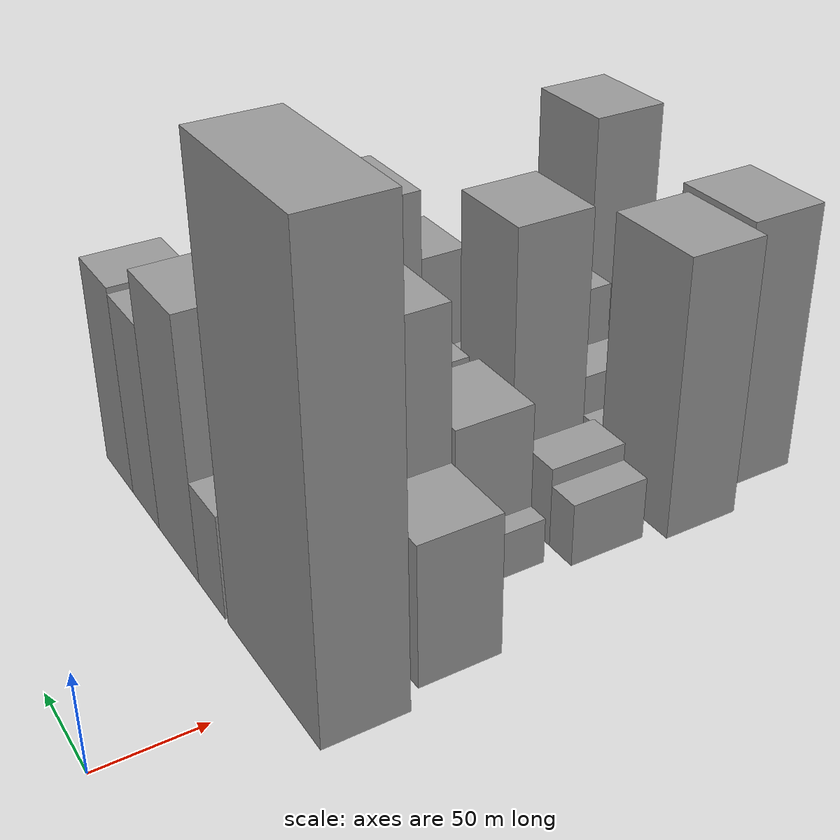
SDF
<sdf version="1.6">
 <world name="default">
  <model name="building_21">
   <static>1</static>
   <pose>100.0000 7.7180 0 0.000000 0.000000 0.000000</pose>
   <link name="link">
    <pose>0 0 112.50 0 0 0</pose>
    <collision name="collision"><geometry><box><size>40.0000 85.6436 225.0000</size></box></geometry></collision>
    <visual name="visual">
     <cast_shadows>0</cast_shadows>
     <geometry><box><size>40.0000 85.6436 225.0000</size></box></geometry>
     <material>
      <script>
       <uri>model://grey_wall/materials/scripts</uri>
       <uri>model://grey_wall/materials/textures</uri>
       <name>vrc/grey_wall</name>
      </script>
     </material>
    </visual>
   </link>
  </model>
  <model name="building_22">
   <static>1</static>
   <pose>100.0000 67.5564 0 0.000000 0.000000 0.000000</pose>
   <link name="link">
    <pose>0 0 27.00 0 0 0</pose>
    <collision name="collision"><geometry><box><size>40.0000 28.0332 54.0000</size></box></geometry></collision>
    <visual name="visual">
     <cast_shadows>0</cast_shadows>
     <geometry><box><size>40.0000 28.0332 54.0000</size></box></geometry>
     <material>
      <script>
       <uri>model://grey_wall/materials/scripts</uri>
       <uri>model://grey_wall/materials/textures</uri>
       <name>vrc/grey_wall</name>
      </script>
     </material>
    </visual>
   </link>
  </model>
  <model name="building_23">
   <static>1</static>
   <pose>100.0000 104.6432 0 0.000000 0.000000 0.000000</pose>
   <link name="link">
    <pose>0 0 67.50 0 0 0</pose>
    <collision name="collision"><geometry><box><size>40.0000 46.1405 135.0000</size></box></geometry></collision>
    <visual name="visual">
     <cast_shadows>0</cast_shadows>
     <geometry><box><size>40.0000 46.1405 135.0000</size></box></geometry>
     <material>
      <script>
       <uri>model://grey_wall/materials/scripts</uri>
       <uri>model://grey_wall/materials/textures</uri>
       <name>vrc/grey_wall</name>
      </script>
     </material>
    </visual>
   </link>
  </model>
  <model name="building_24">
   <static>1</static>
   <pose>100.0000 144.3165 0 0.000000 0.000000 0.000000</pose>
   <link name="link">
    <pose>0 0 54.00 0 0 0</pose>
    <collision name="collision"><geometry><box><size>40.0000 33.2061 108.0000</size></box></geometry></collision>
    <visual name="visual">
     <cast_shadows>0</cast_shadows>
     <geometry><box><size>40.0000 33.2061 108.0000</size></box></geometry>
     <material>
      <script>
       <uri>model://grey_wall/materials/scripts</uri>
       <uri>model://grey_wall/materials/textures</uri>
       <name>vrc/grey_wall</name>
      </script>
     </material>
    </visual>
   </link>
  </model>
  <model name="building_25">
   <static>1</static>
   <pose>100.0000 178.6561 0 0.000000 0.000000 0.000000</pose>
   <link name="link">
    <pose>0 0 55.50 0 0 0</pose>
    <collision name="collision"><geometry><box><size>40.0000 35.4731 111.0000</size></box></geometry></collision>
    <visual name="visual">
     <cast_shadows>0</cast_shadows>
     <geometry><box><size>40.0000 35.4731 111.0000</size></box></geometry>
     <material>
      <script>
       <uri>model://grey_wall/materials/scripts</uri>
       <uri>model://grey_wall/materials/textures</uri>
       <name>vrc/grey_wall</name>
      </script>
     </material>
    </visual>
   </link>
  </model>
  <model name="building_66">
   <static>1</static>
   <pose>149.0000 -5.5144 0 0.000000 0.000000 0.000000</pose>
   <link name="link">
    <pose>0 0 36.00 0 0 0</pose>
    <collision name="collision"><geometry><box><size>40.0000 39.9262 72.0000</size></box></geometry></collision>
    <visual name="visual">
     <cast_shadows>0</cast_shadows>
     <geometry><box><size>40.0000 39.9262 72.0000</size></box></geometry>
     <material>
      <script>
       <uri>model://grey_wall/materials/scripts</uri>
       <uri>model://grey_wall/materials/textures</uri>
       <name>vrc/grey_wall</name>
      </script>
     </material>
    </visual>
   </link>
  </model>
  <model name="building_67">
   <static>1</static>
   <pose>149.0000 37.9203 0 0.000000 0.000000 0.000000</pose>
   <link name="link">
    <pose>0 0 73.50 0 0 0</pose>
    <collision name="collision"><geometry><box><size>40.0000 46.9433 147.0000</size></box></geometry></collision>
    <visual name="visual">
     <cast_shadows>0</cast_shadows>
     <geometry><box><size>40.0000 46.9433 147.0000</size></box></geometry>
     <material>
      <script>
       <uri>model://grey_wall/materials/scripts</uri>
       <uri>model://grey_wall/materials/textures</uri>
       <name>vrc/grey_wall</name>
      </script>
     </material>
    </visual>
   </link>
  </model>
  <model name="building_68">
   <static>1</static>
   <pose>149.0000 71.8959 0 0.000000 0.000000 0.000000</pose>
   <link name="link">
    <pose>0 0 19.50 0 0 0</pose>
    <collision name="collision"><geometry><box><size>40.0000 21.0079 39.0000</size></box></geometry></collision>
    <visual name="visual">
     <cast_shadows>0</cast_shadows>
     <geometry><box><size>40.0000 21.0079 39.0000</size></box></geometry>
     <material>
      <script>
       <uri>model://grey_wall/materials/scripts</uri>
       <uri>model://grey_wall/materials/textures</uri>
       <name>vrc/grey_wall</name>
      </script>
     </material>
    </visual>
   </link>
  </model>
  <model name="building_69">
   <static>1</static>
   <pose>149.0000 100.2830 0 0.000000 0.000000 0.000000</pose>
   <link name="link">
    <pose>0 0 27.00 0 0 0</pose>
    <collision name="collision"><geometry><box><size>40.0000 29.7663 54.0000</size></box></geometry></collision>
    <visual name="visual">
     <cast_shadows>0</cast_shadows>
     <geometry><box><size>40.0000 29.7663 54.0000</size></box></geometry>
     <material>
      <script>
       <uri>model://grey_wall/materials/scripts</uri>
       <uri>model://grey_wall/materials/textures</uri>
       <name>vrc/grey_wall</name>
      </script>
     </material>
    </visual>
   </link>
  </model>
  <model name="building_70">
   <static>1</static>
   <pose>149.0000 123.4607 0 0.000000 0.000000 0.000000</pose>
   <link name="link">
    <pose>0 0 16.50 0 0 0</pose>
    <collision name="collision"><geometry><box><size>40.0000 16.5891 33.0000</size></box></geometry></collision>
    <visual name="visual">
     <cast_shadows>0</cast_shadows>
     <geometry><box><size>40.0000 16.5891 33.0000</size></box></geometry>
     <material>
      <script>
       <uri>model://grey_wall/materials/scripts</uri>
       <uri>model://grey_wall/materials/textures</uri>
       <name>vrc/grey_wall</name>
      </script>
     </material>
    </visual>
   </link>
  </model>
  <model name="building_71">
   <static>1</static>
   <pose>149.0000 141.8349 0 0.000000 0.000000 0.000000</pose>
   <link name="link">
    <pose>0 0 18.00 0 0 0</pose>
    <collision name="collision"><geometry><box><size>40.0000 20.1593 36.0000</size></box></geometry></collision>
    <visual name="visual">
     <cast_shadows>0</cast_shadows>
     <geometry><box><size>40.0000 20.1593 36.0000</size></box></geometry>
     <material>
      <script>
       <uri>model://grey_wall/materials/scripts</uri>
       <uri>model://grey_wall/materials/textures</uri>
       <name>vrc/grey_wall</name>
      </script>
     </material>
    </visual>
   </link>
  </model>
  <model name="building_72">
   <static>1</static>
   <pose>149.0000 163.6154 0 0.000000 0.000000 0.000000</pose>
   <link name="link">
    <pose>0 0 16.50 0 0 0</pose>
    <collision name="collision"><geometry><box><size>40.0000 17.4017 33.0000</size></box></geometry></collision>
    <visual name="visual">
     <cast_shadows>0</cast_shadows>
     <geometry><box><size>40.0000 17.4017 33.0000</size></box></geometry>
     <material>
      <script>
       <uri>model://grey_wall/materials/scripts</uri>
       <uri>model://grey_wall/materials/textures</uri>
       <name>vrc/grey_wall</name>
      </script>
     </material>
    </visual>
   </link>
  </model>
  <model name="building_73">
   <static>1</static>
   <pose>149.0000 189.3897 0 0.000000 0.000000 0.000000</pose>
   <link name="link">
    <pose>0 0 28.50 0 0 0</pose>
    <collision name="collision"><geometry><box><size>40.0000 34.1471 57.0000</size></box></geometry></collision>
    <visual name="visual">
     <cast_shadows>0</cast_shadows>
     <geometry><box><size>40.0000 34.1471 57.0000</size></box></geometry>
     <material>
      <script>
       <uri>model://grey_wall/materials/scripts</uri>
       <uri>model://grey_wall/materials/textures</uri>
       <name>vrc/grey_wall</name>
      </script>
     </material>
    </visual>
   </link>
  </model>
  <model name="building_116">
   <static>1</static>
   <pose>198.0000 20.4674 0 0.000000 0.000000 0.000000</pose>
   <link name="link">
    <pose>0 0 12.00 0 0 0</pose>
    <collision name="collision"><geometry><box><size>40.0000 11.0760 24.0000</size></box></geometry></collision>
    <visual name="visual">
     <cast_shadows>0</cast_shadows>
     <geometry><box><size>40.0000 11.0760 24.0000</size></box></geometry>
     <material>
      <script>
       <uri>model://grey_wall/materials/scripts</uri>
       <uri>model://grey_wall/materials/textures</uri>
       <name>vrc/grey_wall</name>
      </script>
     </material>
    </visual>
   </link>
  </model>
  <model name="building_117">
   <static>1</static>
   <pose>198.0000 48.2510 0 0.000000 0.000000 0.000000</pose>
   <link name="link">
    <pose>0 0 39.00 0 0 0</pose>
    <collision name="collision"><geometry><box><size>40.0000 44.4912 78.0000</size></box></geometry></collision>
    <visual name="visual">
     <cast_shadows>0</cast_shadows>
     <geometry><box><size>40.0000 44.4912 78.0000</size></box></geometry>
     <material>
      <script>
       <uri>model://grey_wall/materials/scripts</uri>
       <uri>model://grey_wall/materials/textures</uri>
       <name>vrc/grey_wall</name>
      </script>
     </material>
    </visual>
   </link>
  </model>
  <model name="building_118">
   <static>1</static>
   <pose>198.0000 98.2552 0 0.000000 0.000000 0.000000</pose>
   <link name="link">
    <pose>0 0 37.50 0 0 0</pose>
    <collision name="collision"><geometry><box><size>40.0000 39.5170 75.0000</size></box></geometry></collision>
    <visual name="visual">
     <cast_shadows>0</cast_shadows>
     <geometry><box><size>40.0000 39.5170 75.0000</size></box></geometry>
     <material>
      <script>
       <uri>model://grey_wall/materials/scripts</uri>
       <uri>model://grey_wall/materials/textures</uri>
       <name>vrc/grey_wall</name>
      </script>
     </material>
    </visual>
   </link>
  </model>
  <model name="building_119">
   <static>1</static>
   <pose>198.0000 144.7241 0 0.000000 0.000000 0.000000</pose>
   <link name="link">
    <pose>0 0 70.50 0 0 0</pose>
    <collision name="collision"><geometry><box><size>40.0000 47.4208 141.0000</size></box></geometry></collision>
    <visual name="visual">
     <cast_shadows>0</cast_shadows>
     <geometry><box><size>40.0000 47.4208 141.0000</size></box></geometry>
     <material>
      <script>
       <uri>model://grey_wall/materials/scripts</uri>
       <uri>model://grey_wall/materials/textures</uri>
       <name>vrc/grey_wall</name>
      </script>
     </material>
    </visual>
   </link>
  </model>
  <model name="building_120">
   <static>1</static>
   <pose>198.0000 191.6738 0 0.000000 0.000000 0.000000</pose>
   <link name="link">
    <pose>0 0 57.00 0 0 0</pose>
    <collision name="collision"><geometry><box><size>40.0000 34.4785 114.0000</size></box></geometry></collision>
    <visual name="visual">
     <cast_shadows>0</cast_shadows>
     <geometry><box><size>40.0000 34.4785 114.0000</size></box></geometry>
     <material>
      <script>
       <uri>model://grey_wall/materials/scripts</uri>
       <uri>model://grey_wall/materials/textures</uri>
       <name>vrc/grey_wall</name>
      </script>
     </material>
    </visual>
   </link>
  </model>
  <model name="building_162">
   <static>1</static>
   <pose>247.0000 14.8649 0 0.000000 0.000000 0.000000</pose>
   <link name="link">
    <pose>0 0 16.50 0 0 0</pose>
    <collision name="collision"><geometry><box><size>40.0000 17.1173 33.0000</size></box></geometry></collision>
    <visual name="visual">
     <cast_shadows>0</cast_shadows>
     <geometry><box><size>40.0000 17.1173 33.0000</size></box></geometry>
     <material>
      <script>
       <uri>model://grey_wall/materials/scripts</uri>
       <uri>model://grey_wall/materials/textures</uri>
       <name>vrc/grey_wall</name>
      </script>
     </material>
    </visual>
   </link>
  </model>
  <model name="building_163">
   <static>1</static>
   <pose>247.0000 35.3036 0 0.000000 0.000000 0.000000</pose>
   <link name="link">
    <pose>0 0 21.00 0 0 0</pose>
    <collision name="collision"><geometry><box><size>40.0000 23.7601 42.0000</size></box></geometry></collision>
    <visual name="visual">
     <cast_shadows>0</cast_shadows>
     <geometry><box><size>40.0000 23.7601 42.0000</size></box></geometry>
     <material>
      <script>
       <uri>model://grey_wall/materials/scripts</uri>
       <uri>model://grey_wall/materials/textures</uri>
       <name>vrc/grey_wall</name>
      </script>
     </material>
    </visual>
   </link>
  </model>
  <model name="building_164">
   <static>1</static>
   <pose>247.0000 77.8672 0 0.000000 0.000000 0.000000</pose>
   <link name="link">
    <pose>0 0 73.50 0 0 0</pose>
    <collision name="collision"><geometry><box><size>40.0000 45.3671 147.0000</size></box></geometry></collision>
    <visual name="visual">
     <cast_shadows>0</cast_shadows>
     <geometry><box><size>40.0000 45.3671 147.0000</size></box></geometry>
     <material>
      <script>
       <uri>model://grey_wall/materials/scripts</uri>
       <uri>model://grey_wall/materials/textures</uri>
       <name>vrc/grey_wall</name>
      </script>
     </material>
    </visual>
   </link>
  </model>
  <model name="building_165">
   <static>1</static>
   <pose>247.0000 121.0301 0 0.000000 0.000000 0.000000</pose>
   <link name="link">
    <pose>0 0 19.50 0 0 0</pose>
    <collision name="collision"><geometry><box><size>40.0000 20.9587 39.0000</size></box></geometry></collision>
    <visual name="visual">
     <cast_shadows>0</cast_shadows>
     <geometry><box><size>40.0000 20.9587 39.0000</size></box></geometry>
     <material>
      <script>
       <uri>model://grey_wall/materials/scripts</uri>
       <uri>model://grey_wall/materials/textures</uri>
       <name>vrc/grey_wall</name>
      </script>
     </material>
    </visual>
   </link>
  </model>
  <model name="building_166">
   <static>1</static>
   <pose>247.0000 149.9940 0 0.000000 0.000000 0.000000</pose>
   <link name="link">
    <pose>0 0 15.00 0 0 0</pose>
    <collision name="collision"><geometry><box><size>40.0000 16.9693 30.0000</size></box></geometry></collision>
    <visual name="visual">
     <cast_shadows>0</cast_shadows>
     <geometry><box><size>40.0000 16.9693 30.0000</size></box></geometry>
     <material>
      <script>
       <uri>model://grey_wall/materials/scripts</uri>
       <uri>model://grey_wall/materials/textures</uri>
       <name>vrc/grey_wall</name>
      </script>
     </material>
    </visual>
   </link>
  </model>
  <model name="building_167">
   <static>1</static>
   <pose>247.0000 180.0418 0 0.000000 0.000000 0.000000</pose>
   <link name="link">
    <pose>0 0 42.00 0 0 0</pose>
    <collision name="collision"><geometry><box><size>40.0000 43.1262 84.0000</size></box></geometry></collision>
    <visual name="visual">
     <cast_shadows>0</cast_shadows>
     <geometry><box><size>40.0000 43.1262 84.0000</size></box></geometry>
     <material>
      <script>
       <uri>model://grey_wall/materials/scripts</uri>
       <uri>model://grey_wall/materials/textures</uri>
       <name>vrc/grey_wall</name>
      </script>
     </material>
    </visual>
   </link>
  </model>
  <model name="building_214">
   <static>1</static>
   <pose>296.0000 25.7202 0 0.000000 0.000000 0.000000</pose>
   <link name="link">
    <pose>0 0 72.00 0 0 0</pose>
    <collision name="collision"><geometry><box><size>40.0000 51.9804 144.0000</size></box></geometry></collision>
    <visual name="visual">
     <cast_shadows>0</cast_shadows>
     <geometry><box><size>40.0000 51.9804 144.0000</size></box></geometry>
     <material>
      <script>
       <uri>model://grey_wall/materials/scripts</uri>
       <uri>model://grey_wall/materials/textures</uri>
       <name>vrc/grey_wall</name>
      </script>
     </material>
    </visual>
   </link>
  </model>
  <model name="building_215">
   <static>1</static>
   <pose>296.0000 59.5621 0 0.000000 0.000000 0.000000</pose>
   <link name="link">
    <pose>0 0 15.00 0 0 0</pose>
    <collision name="collision"><geometry><box><size>40.0000 15.7033 30.0000</size></box></geometry></collision>
    <visual name="visual">
     <cast_shadows>0</cast_shadows>
     <geometry><box><size>40.0000 15.7033 30.0000</size></box></geometry>
     <material>
      <script>
       <uri>model://grey_wall/materials/scripts</uri>
       <uri>model://grey_wall/materials/textures</uri>
       <name>vrc/grey_wall</name>
      </script>
     </material>
    </visual>
   </link>
  </model>
  <model name="building_216">
   <static>1</static>
   <pose>296.0000 83.8780 0 0.000000 0.000000 0.000000</pose>
   <link name="link">
    <pose>0 0 24.00 0 0 0</pose>
    <collision name="collision"><geometry><box><size>40.0000 24.9285 48.0000</size></box></geometry></collision>
    <visual name="visual">
     <cast_shadows>0</cast_shadows>
     <geometry><box><size>40.0000 24.9285 48.0000</size></box></geometry>
     <material>
      <script>
       <uri>model://grey_wall/materials/scripts</uri>
       <uri>model://grey_wall/materials/textures</uri>
       <name>vrc/grey_wall</name>
      </script>
     </material>
    </visual>
   </link>
  </model>
  <model name="building_217">
   <static>1</static>
   <pose>296.0000 122.1025 0 0.000000 0.000000 0.000000</pose>
   <link name="link">
    <pose>0 0 37.50 0 0 0</pose>
    <collision name="collision"><geometry><box><size>40.0000 39.5205 75.0000</size></box></geometry></collision>
    <visual name="visual">
     <cast_shadows>0</cast_shadows>
     <geometry><box><size>40.0000 39.5205 75.0000</size></box></geometry>
     <material>
      <script>
       <uri>model://grey_wall/materials/scripts</uri>
       <uri>model://grey_wall/materials/textures</uri>
       <name>vrc/grey_wall</name>
      </script>
     </material>
    </visual>
   </link>
  </model>
  <model name="building_218">
   <static>1</static>
   <pose>296.0000 155.6376 0 0.000000 0.000000 0.000000</pose>
   <link name="link">
    <pose>0 0 12.00 0 0 0</pose>
    <collision name="collision"><geometry><box><size>40.0000 11.5498 24.0000</size></box></geometry></collision>
    <visual name="visual">
     <cast_shadows>0</cast_shadows>
     <geometry><box><size>40.0000 11.5498 24.0000</size></box></geometry>
     <material>
      <script>
       <uri>model://grey_wall/materials/scripts</uri>
       <uri>model://grey_wall/materials/textures</uri>
       <name>vrc/grey_wall</name>
      </script>
     </material>
    </visual>
   </link>
  </model>
  <model name="building_219">
   <static>1</static>
   <pose>296.0000 172.8524 0 0.000000 0.000000 0.000000</pose>
   <link name="link">
    <pose>0 0 12.00 0 0 0</pose>
    <collision name="collision"><geometry><box><size>40.0000 10.8798 24.0000</size></box></geometry></collision>
    <visual name="visual">
     <cast_shadows>0</cast_shadows>
     <geometry><box><size>40.0000 10.8798 24.0000</size></box></geometry>
     <material>
      <script>
       <uri>model://grey_wall/materials/scripts</uri>
       <uri>model://grey_wall/materials/textures</uri>
       <name>vrc/grey_wall</name>
      </script>
     </material>
    </visual>
   </link>
  </model>
  <model name="building_264">
   <static>1</static>
   <pose>345.0000 40.8774 0 0.000000 0.000000 0.000000</pose>
   <link name="link">
    <pose>0 0 70.50 0 0 0</pose>
    <collision name="collision"><geometry><box><size>40.0000 49.4869 141.0000</size></box></geometry></collision>
    <visual name="visual">
     <cast_shadows>0</cast_shadows>
     <geometry><box><size>40.0000 49.4869 141.0000</size></box></geometry>
     <material>
      <script>
       <uri>model://grey_wall/materials/scripts</uri>
       <uri>model://grey_wall/materials/textures</uri>
       <name>vrc/grey_wall</name>
      </script>
     </material>
    </visual>
   </link>
  </model>
  <model name="building_265">
   <static>1</static>
   <pose>345.0000 74.6195 0 0.000000 0.000000 0.000000</pose>
   <link name="link">
    <pose>0 0 13.50 0 0 0</pose>
    <collision name="collision"><geometry><box><size>40.0000 11.9972 27.0000</size></box></geometry></collision>
    <visual name="visual">
     <cast_shadows>0</cast_shadows>
     <geometry><box><size>40.0000 11.9972 27.0000</size></box></geometry>
     <material>
      <script>
       <uri>model://grey_wall/materials/scripts</uri>
       <uri>model://grey_wall/materials/textures</uri>
       <name>vrc/grey_wall</name>
      </script>
     </material>
    </visual>
   </link>
  </model>
  <model name="building_266">
   <static>1</static>
   <pose>345.0000 94.7022 0 0.000000 0.000000 0.000000</pose>
   <link name="link">
    <pose>0 0 27.00 0 0 0</pose>
    <collision name="collision"><geometry><box><size>40.0000 28.1682 54.0000</size></box></geometry></collision>
    <visual name="visual">
     <cast_shadows>0</cast_shadows>
     <geometry><box><size>40.0000 28.1682 54.0000</size></box></geometry>
     <material>
      <script>
       <uri>model://grey_wall/materials/scripts</uri>
       <uri>model://grey_wall/materials/textures</uri>
       <name>vrc/grey_wall</name>
      </script>
     </material>
    </visual>
   </link>
  </model>
  <model name="building_267">
   <static>1</static>
   <pose>345.0000 123.0963 0 0.000000 0.000000 0.000000</pose>
   <link name="link">
    <pose>0 0 15.00 0 0 0</pose>
    <collision name="collision"><geometry><box><size>40.0000 16.6199 30.0000</size></box></geometry></collision>
    <visual name="visual">
     <cast_shadows>0</cast_shadows>
     <geometry><box><size>40.0000 16.6199 30.0000</size></box></geometry>
     <material>
      <script>
       <uri>model://grey_wall/materials/scripts</uri>
       <uri>model://grey_wall/materials/textures</uri>
       <name>vrc/grey_wall</name>
      </script>
     </material>
    </visual>
   </link>
  </model>
  <model name="building_268">
   <static>1</static>
   <pose>345.0000 156.1551 0 0.000000 0.000000 0.000000</pose>
   <link name="link">
    <pose>0 0 75.00 0 0 0</pose>
    <collision name="collision"><geometry><box><size>40.0000 49.4978 150.0000</size></box></geometry></collision>
    <visual name="visual">
     <cast_shadows>0</cast_shadows>
     <geometry><box><size>40.0000 49.4978 150.0000</size></box></geometry>
     <material>
      <script>
       <uri>model://grey_wall/materials/scripts</uri>
       <uri>model://grey_wall/materials/textures</uri>
       <name>vrc/grey_wall</name>
      </script>
     </material>
    </visual>
   </link>
  </model>
 </world>
</sdf>
